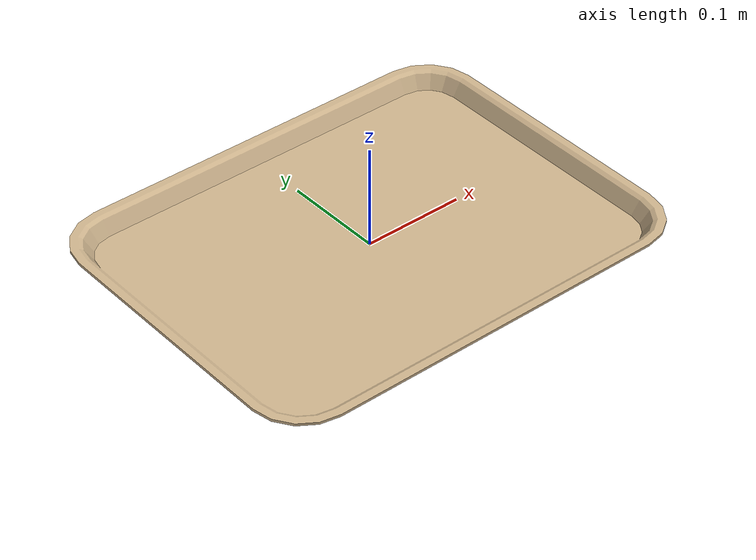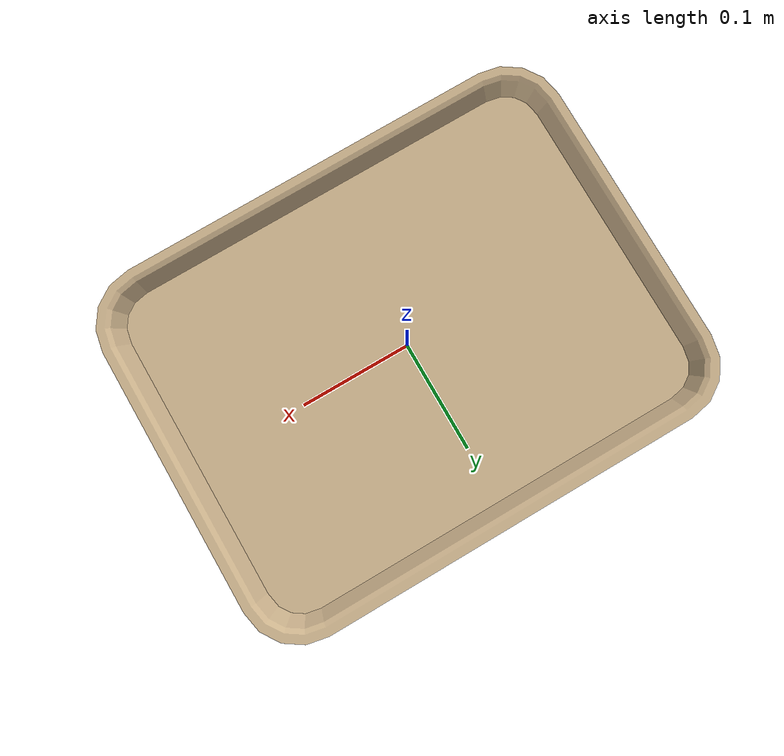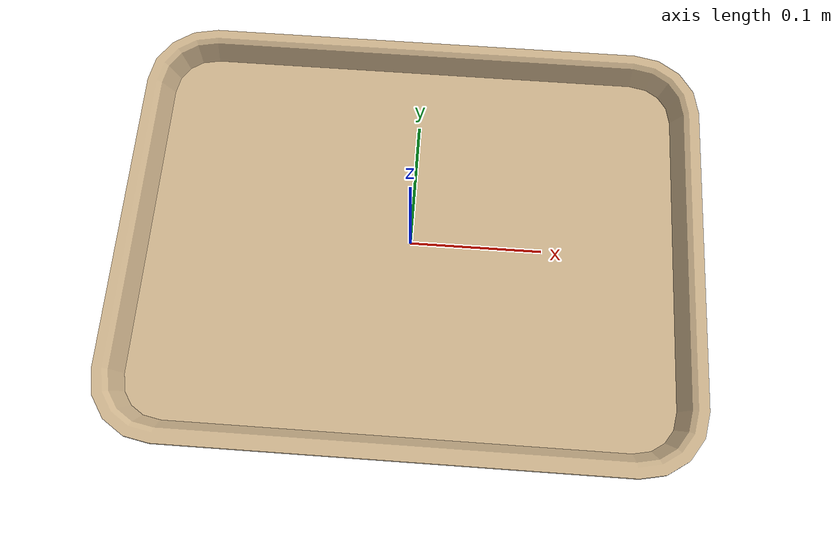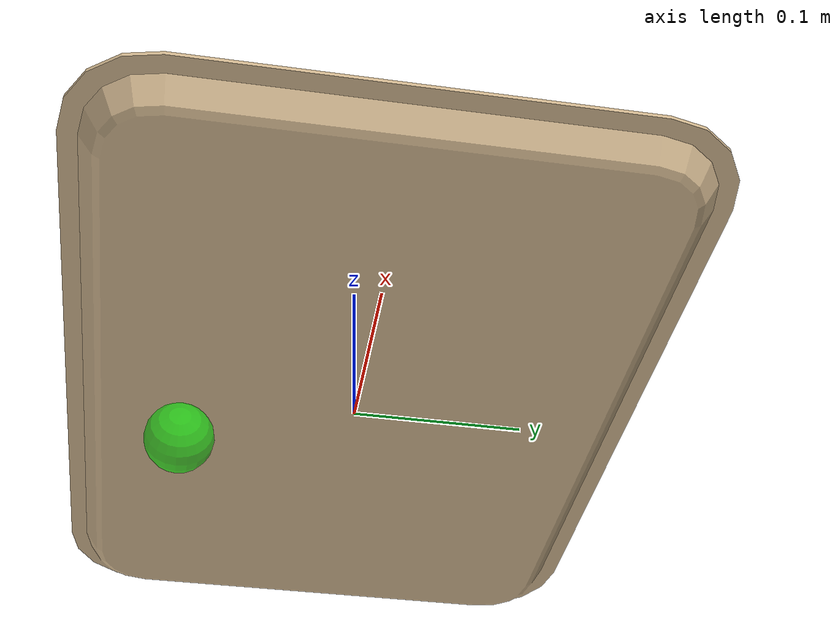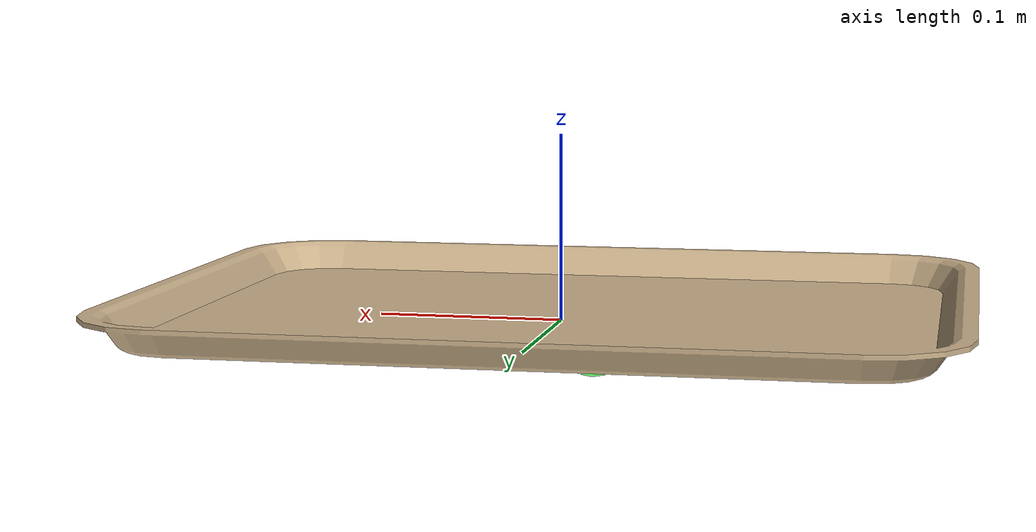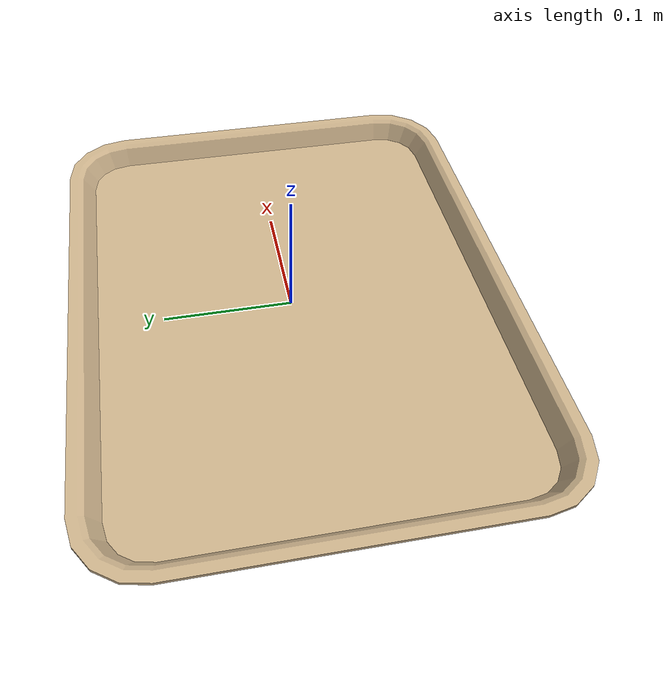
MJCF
<mujoco model="food_tray">
  <compiler angle="radian" meshdir="assets" autolimits="true"/>

  <asset>
    <mesh name="food_tray" file="food_tray.stl" scale="0.2 0.2 0.2"/>
    <material name="tray_mat" rgba="0.8 0.7 0.55 1"/>
  </asset>

  <worldbody>
    <body name="tray" pos="0 0 0">
      <freejoint/>

      <geom
        name="tray_geom"
        type="mesh"
        mesh="food_tray"
        material="tray_mat"
        friction="0.4 0.005 0.0001"
        contype="1"
        conaffinity="1"
        />

      <site
        name="tray_center"
        pos="0 -0.1 -0.03"
        quat="0.5 0.5 0.5 0.5"
        size="0.02"
        rgba="0 1 0 0.6"
      />

      <inertial
        pos="0 0 0"
        mass="0.4"
        diaginertia="0.001 0.001 0.001"
      />
    </body>
  </worldbody>
</mujoco>
